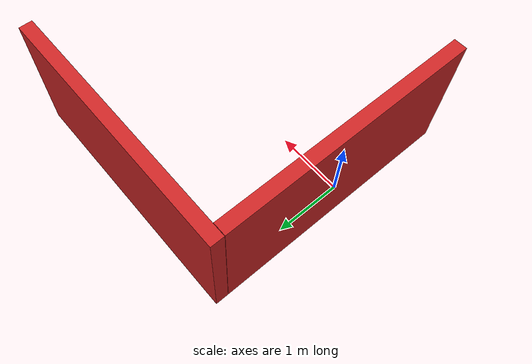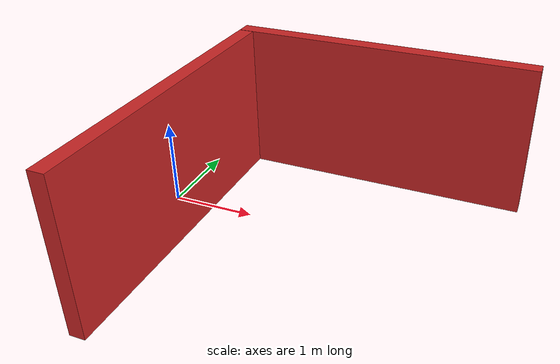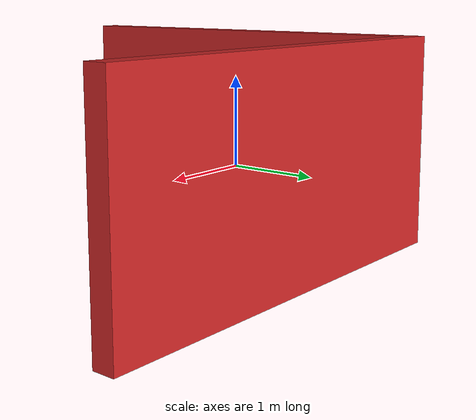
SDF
<?xml version='1.0'?>
<sdf version='1.7'>
  <model name='heavy_wall'>
    <link name='link'>
      <inertial>
        <mass>400</mass>
        <inertia>
          <ixx>666.667</ixx>
          <ixy>0</ixy>
          <ixz>0</ixz>
          <iyy>134.667</iyy>
          <iyz>0</iyz>
          <izz>534.667</izz>
        </inertia>
        <pose>0 0 0 0 -0 0</pose>
      </inertial>
      <self_collide>0</self_collide>
      <enable_wind>0</enable_wind>
      <kinematic>0</kinematic>
      <pose>0 0 0.5 0 -0 0</pose>
      <gravity>1</gravity>
      <visual name='visual'>
        <geometry>
          <box>
            <size>0.2 4 2</size>
          </box>
        </geometry>
        <material>
          <script>
            <name>Gazebo/Red</name>
            <uri>file://media/materials/scripts/gazebo.material</uri>
          </script>
          <shader type='pixel'>
            <normal_map>__default__</normal_map>
          </shader>
          <ambient>0.3 0.3 0.3 1</ambient>
          <diffuse>0.7 0.7 0.7 1</diffuse>
          <specular>0.01 0.01 0.01 1</specular>
        </material>
        <pose>0 0 0 0 -0 0</pose>
        <transparency>0</transparency>
        <cast_shadows>1</cast_shadows>
      </visual>
      <collision name='collision'>
        <laser_retro>0</laser_retro>
        <max_contacts>10</max_contacts>
        <pose>0 0 0 0 -0 0</pose>
        <geometry>
          <box>
            <size>0.2 4 2</size>
          </box>
        </geometry>
        <surface>
          <friction>
            <ode>
              <mu>1</mu>
              <mu2>1</mu2>
              <fdir1>0 0 0</fdir1>
              <slip1>0</slip1>
              <slip2>0</slip2>
            </ode>
            <torsional>
              <coefficient>1</coefficient>
              <patch_radius>0</patch_radius>
              <surface_radius>0</surface_radius>
              <use_patch_radius>1</use_patch_radius>
              <ode>
                <slip>0</slip>
              </ode>
            </torsional>
          </friction>
          <bounce>
            <restitution_coefficient>0</restitution_coefficient>
            <threshold>1e+06</threshold>
          </bounce>
          <contact>
            <collide_without_contact>0</collide_without_contact>
            <collide_without_contact_bitmask>1</collide_without_contact_bitmask>
            <collide_bitmask>1</collide_bitmask>
            <ode>
              <soft_cfm>0</soft_cfm>
              <soft_erp>0.2</soft_erp>
              <kp>1e+13</kp>
              <kd>1</kd>
              <max_vel>0.01</max_vel>
              <min_depth>0</min_depth>
            </ode>
            <bullet>
              <split_impulse>1</split_impulse>
              <split_impulse_penetration_threshold>-0.01</split_impulse_penetration_threshold>
              <soft_cfm>0</soft_cfm>
              <soft_erp>0.2</soft_erp>
              <kp>1e+13</kp>
              <kd>1</kd>
            </bullet>
          </contact>
        </surface>
      </collision>
    </link>
    <link name='link_clone'>
      <inertial>
        <mass>400</mass>
        <inertia>
          <ixx>666.667</ixx>
          <ixy>0</ixy>
          <ixz>0</ixz>
          <iyy>134.667</iyy>
          <iyz>0</iyz>
          <izz>534.667</izz>
        </inertia>
        <pose>0 0 0 0 -0 0</pose>
      </inertial>
      <self_collide>0</self_collide>
      <enable_wind>0</enable_wind>
      <kinematic>0</kinematic>
      <pose>1.9 2.1 0.5 0 -0 1.56811</pose>
      <gravity>1</gravity>
      <visual name='visual'>
        <geometry>
          <box>
            <size>0.2 4 2</size>
          </box>
        </geometry>
        <material>
          <script>
            <name>Gazebo/Red</name>
            <uri>file://media/materials/scripts/gazebo.material</uri>
          </script>
          <shader type='pixel'>
            <normal_map>__default__</normal_map>
          </shader>
          <ambient>0.3 0.3 0.3 1</ambient>
          <diffuse>0.7 0.7 0.7 1</diffuse>
          <specular>0.01 0.01 0.01 1</specular>
        </material>
        <pose>0 0 0 0 -0 0</pose>
        <transparency>0</transparency>
        <cast_shadows>1</cast_shadows>
      </visual>
      <collision name='collision'>
        <laser_retro>0</laser_retro>
        <max_contacts>10</max_contacts>
        <pose>0 0 0 0 -0 0</pose>
        <geometry>
          <box>
            <size>0.2 4 2</size>
          </box>
        </geometry>
        <surface>
          <friction>
            <ode>
              <mu>1</mu>
              <mu2>1</mu2>
              <fdir1>0 0 0</fdir1>
              <slip1>0</slip1>
              <slip2>0</slip2>
            </ode>
            <torsional>
              <coefficient>1</coefficient>
              <patch_radius>0</patch_radius>
              <surface_radius>0</surface_radius>
              <use_patch_radius>1</use_patch_radius>
              <ode>
                <slip>0</slip>
              </ode>
            </torsional>
          </friction>
          <bounce>
            <restitution_coefficient>0</restitution_coefficient>
            <threshold>1e+06</threshold>
          </bounce>
          <contact>
            <collide_without_contact>0</collide_without_contact>
            <collide_without_contact_bitmask>1</collide_without_contact_bitmask>
            <collide_bitmask>1</collide_bitmask>
            <ode>
              <soft_cfm>0</soft_cfm>
              <soft_erp>0.2</soft_erp>
              <kp>1e+13</kp>
              <kd>1</kd>
              <max_vel>0.01</max_vel>
              <min_depth>0</min_depth>
            </ode>
            <bullet>
              <split_impulse>1</split_impulse>
              <split_impulse_penetration_threshold>-0.01</split_impulse_penetration_threshold>
              <soft_cfm>0</soft_cfm>
              <soft_erp>0.2</soft_erp>
              <kp>1e+13</kp>
              <kd>1</kd>
            </bullet>
          </contact>
        </surface>
      </collision>
    </link>
    <static>0</static>
    <allow_auto_disable>1</allow_auto_disable>
  </model>
</sdf>
